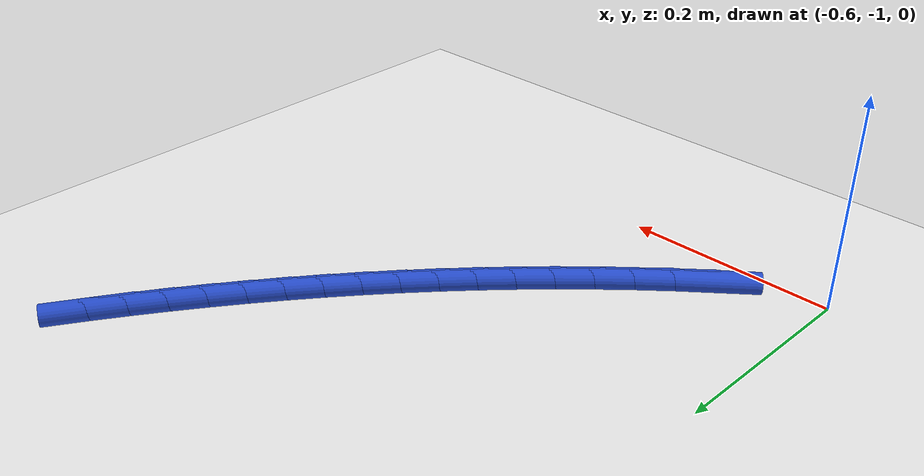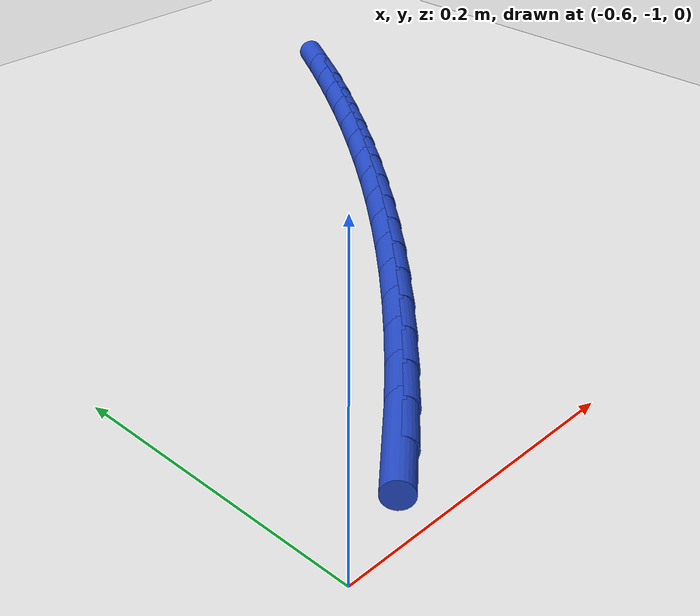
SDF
<sdf version="1.6">
 <world name="default">
  <model name="ground_plane">
   <static>1</static>
   <link name="link">
    <collision name="collision">
     <geometry><plane><normal>0 0 1</normal><size>100 100</size></plane></geometry>
     <surface><friction><ode><mu>100</mu><mu2>50</mu2></ode></friction></surface>
    </collision>
    <visual name="visual">
     <cast_shadows>0</cast_shadows>
     <geometry><plane><normal>0 0 1</normal><size>100 100</size></plane></geometry>
     <material>
      <script><uri>file://media/materials/scripts/gazebo.material</uri><name>Gazebo/WhiteGlow</name></script>
     </material>
    </visual>
   </link>
  </model>
  <model name="line">
   <link name="link_167">
    <pose>-0.5140945786392422 -0.9553147655145959 0.01 0 1.57 0.7058477591919016</pose>
    <collision name="collision">
     <geometry><cylinder><radius>0.01</radius><length>0.08</length></cylinder></geometry>
    </collision>
    <visual name="visual">
     <material>
      <script><name>Gazebo/Blue</name><uri>file://media/materials/scripts/gazebo.material</uri></script>
     </material>
     <geometry><cylinder><radius>0.01</radius><length>0.08</length></cylinder></geometry>
    </visual>
   </link>
   <link name="link_168">
    <pose>-0.48701919273074235 -0.9322374819787494 0.01 0 1.57 0.7328680994456055</pose>
    <collision name="collision">
     <geometry><cylinder><radius>0.01</radius><length>0.08</length></cylinder></geometry>
    </collision>
    <visual name="visual">
     <material>
      <script><name>Gazebo/Blue</name><uri>file://media/materials/scripts/gazebo.material</uri></script>
     </material>
     <geometry><cylinder><radius>0.01</radius><length>0.08</length></cylinder></geometry>
    </visual>
   </link>
   <link name="link_169">
    <pose>-0.4606701408027664 -0.9085208075700943 0.01 0 1.57 0.7566047217854961</pose>
    <collision name="collision">
     <geometry><cylinder><radius>0.01</radius><length>0.08</length></cylinder></geometry>
    </collision>
    <visual name="visual">
     <material>
      <script><name>Gazebo/Blue</name><uri>file://media/materials/scripts/gazebo.material</uri></script>
     </material>
     <geometry><cylinder><radius>0.01</radius><length>0.08</length></cylinder></geometry>
    </visual>
   </link>
   <link name="link_170">
    <pose>-0.4350868867499562 -0.8843699651936539 0.01 0 1.57 0.7778321144152346</pose>
    <collision name="collision">
     <geometry><cylinder><radius>0.01</radius><length>0.08</length></cylinder></geometry>
    </collision>
    <visual name="visual">
     <material>
      <script><name>Gazebo/Blue</name><uri>file://media/materials/scripts/gazebo.material</uri></script>
     </material>
     <geometry><cylinder><radius>0.01</radius><length>0.08</length></cylinder></geometry>
    </visual>
   </link>
   <link name="link_171">
    <pose>-0.4102954462126454 -0.8599508611519097 0.01 0 1.57 0.7986441294286843</pose>
    <collision name="collision">
     <geometry><cylinder><radius>0.01</radius><length>0.08</length></cylinder></geometry>
    </collision>
    <visual name="visual">
     <material>
      <script><name>Gazebo/Blue</name><uri>file://media/materials/scripts/gazebo.material</uri></script>
     </material>
     <geometry><cylinder><radius>0.01</radius><length>0.08</length></cylinder></geometry>
    </visual>
   </link>
   <link name="link_172">
    <pose>-0.3862713138934553 -0.8352817014151958 0.01 0 1.57 0.8194412832747671</pose>
    <collision name="collision">
     <geometry><cylinder><radius>0.01</radius><length>0.08</length></cylinder></geometry>
    </collision>
    <visual name="visual">
     <material>
      <script><name>Gazebo/Blue</name><uri>file://media/materials/scripts/gazebo.material</uri></script>
     </material>
     <geometry><cylinder><radius>0.01</radius><length>0.08</length></cylinder></geometry>
    </visual>
   </link>
   <link name="link_173">
    <pose>-0.36297812309288446 -0.8103460145881334 0.01 0 1.57 0.8401367598369827</pose>
    <collision name="collision">
     <geometry><cylinder><radius>0.01</radius><length>0.08</length></cylinder></geometry>
    </collision>
    <visual name="visual">
     <material>
      <script><name>Gazebo/Blue</name><uri>file://media/materials/scripts/gazebo.material</uri></script>
     </material>
     <geometry><cylinder><radius>0.01</radius><length>0.08</length></cylinder></geometry>
    </visual>
   </link>
   <link name="link_174">
    <pose>-0.34037950711143145 -0.7851273292753438 0.01 0 1.57 0.8606425972481305</pose>
    <collision name="collision">
     <geometry><cylinder><radius>0.01</radius><length>0.08</length></cylinder></geometry>
    </collision>
    <visual name="visual">
     <material>
      <script><name>Gazebo/Blue</name><uri>file://media/materials/scripts/gazebo.material</uri></script>
     </material>
     <geometry><cylinder><radius>0.01</radius><length>0.08</length></cylinder></geometry>
    </visual>
   </link>
   <link name="link_175">
    <pose>-0.31843909924959507 -0.7596091740814483 0.01 0 1.57 0.8808710721579227</pose>
    <collision name="collision">
     <geometry><cylinder><radius>0.01</radius><length>0.08</length></cylinder></geometry>
    </collision>
    <visual name="visual">
     <material>
      <script><name>Gazebo/Blue</name><uri>file://media/materials/scripts/gazebo.material</uri></script>
     </material>
     <geometry><cylinder><radius>0.01</radius><length>0.08</length></cylinder></geometry>
    </visual>
   </link>
   <link name="link_176">
    <pose>-0.2971205328078737 -0.7337750776110677 0.01 0 1.57 0.9007360903244767</pose>
    <collision name="collision">
     <geometry><cylinder><radius>0.01</radius><length>0.08</length></cylinder></geometry>
    </collision>
    <visual name="visual">
     <material>
      <script><name>Gazebo/Blue</name><uri>file://media/materials/scripts/gazebo.material</uri></script>
     </material>
     <geometry><cylinder><radius>0.01</radius><length>0.08</length></cylinder></geometry>
    </visual>
   </link>
   <link name="link_177">
    <pose>-0.27638744108676633 -0.707608568468824 0.01 0 1.57 0.9201545314492994</pose>
    <collision name="collision">
     <geometry><cylinder><radius>0.01</radius><length>0.08</length></cylinder></geometry>
    </collision>
    <visual name="visual">
     <material>
      <script><name>Gazebo/Blue</name><uri>file://media/materials/scripts/gazebo.material</uri></script>
     </material>
     <geometry><cylinder><radius>0.01</radius><length>0.08</length></cylinder></geometry>
    </visual>
   </link>
   <link name="link_178">
    <pose>-0.2562034573867713 -0.6810931752593379 0.01 0 1.57 0.9390474992405463</pose>
    <collision name="collision">
     <geometry><cylinder><radius>0.01</radius><length>0.08</length></cylinder></geometry>
    </collision>
    <visual name="visual">
     <material>
      <script><name>Gazebo/Blue</name><uri>file://media/materials/scripts/gazebo.material</uri></script>
     </material>
     <geometry><cylinder><radius>0.01</radius><length>0.08</length></cylinder></geometry>
    </visual>
   </link>
   <link name="link_179">
    <pose>-0.2365322150083873 -0.6542124265872307 0.01 0 1.57 0.957341434029083</pose>
    <collision name="collision">
     <geometry><cylinder><radius>0.01</radius><length>0.08</length></cylinder></geometry>
    </collision>
    <visual name="visual">
     <material>
      <script><name>Gazebo/Blue</name><uri>file://media/materials/scripts/gazebo.material</uri></script>
     </material>
     <geometry><cylinder><radius>0.01</radius><length>0.08</length></cylinder></geometry>
    </visual>
   </link>
   <link name="link_180">
    <pose>-0.21733734725211304 -0.6269498510571234 0.01 0 1.57 0.9749690541918903</pose>
    <collision name="collision">
     <geometry><cylinder><radius>0.01</radius><length>0.08</length></cylinder></geometry>
    </collision>
    <visual name="visual">
     <material>
      <script><name>Gazebo/Blue</name><uri>file://media/materials/scripts/gazebo.material</uri></script>
     </material>
     <geometry><cylinder><radius>0.01</radius><length>0.08</length></cylinder></geometry>
    </visual>
   </link>
   <link name="link_181">
    <pose>-0.19858248741844714 -0.5992889772736377 0.01 0 1.57 0.9919679345201159</pose>
    <collision name="collision">
     <geometry><cylinder><radius>0.01</radius><length>0.08</length></cylinder></geometry>
    </collision>
    <visual name="visual">
     <material>
      <script><name>Gazebo/Blue</name><uri>file://media/materials/scripts/gazebo.material</uri></script>
     </material>
     <geometry><cylinder><radius>0.01</radius><length>0.08</length></cylinder></geometry>
    </visual>
   </link>
   <link name="link_182">
    <pose>-0.1802355586688201 -0.5712138999503806 0.01 0 1.57 1.0098371432708413</pose>
    <collision name="collision">
     <geometry><cylinder><radius>0.01</radius><length>0.08</length></cylinder></geometry>
    </collision>
    <visual name="visual">
     <material>
      <script><name>Gazebo/Blue</name><uri>file://media/materials/scripts/gazebo.material</uri></script>
     </material>
     <geometry><cylinder><radius>0.01</radius><length>0.08</length></cylinder></geometry>
    </visual>
   </link>
   <link name="link_183">
    <pose>-0.1623317073133017 -0.5427175848644108 0.01 0 1.57 1.0298238739797074</pose>
    <collision name="collision">
     <geometry><cylinder><radius>0.01</radius><length>0.08</length></cylinder></geometry>
    </collision>
    <visual name="visual">
     <material>
      <script><name>Gazebo/Blue</name><uri>file://media/materials/scripts/gazebo.material</uri></script>
     </material>
     <geometry><cylinder><radius>0.01</radius><length>0.08</length></cylinder></geometry>
    </visual>
   </link>
  </model>
 </world>
</sdf>
